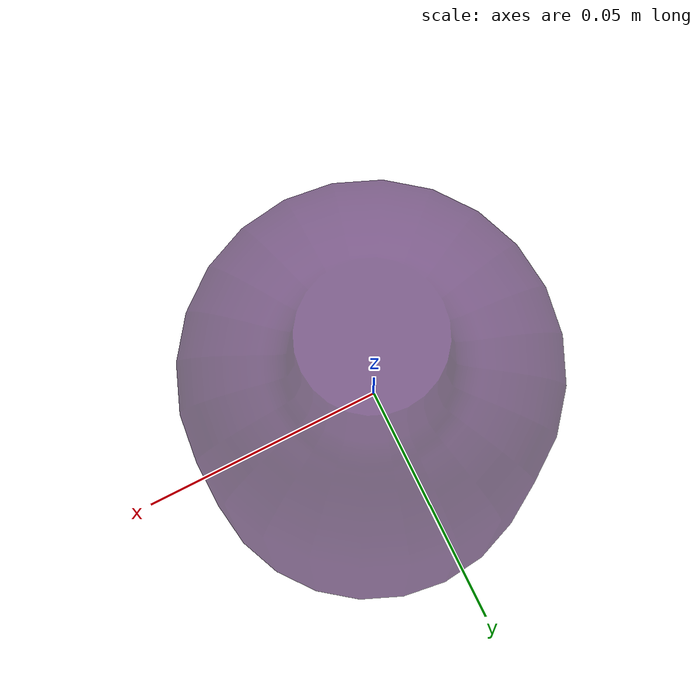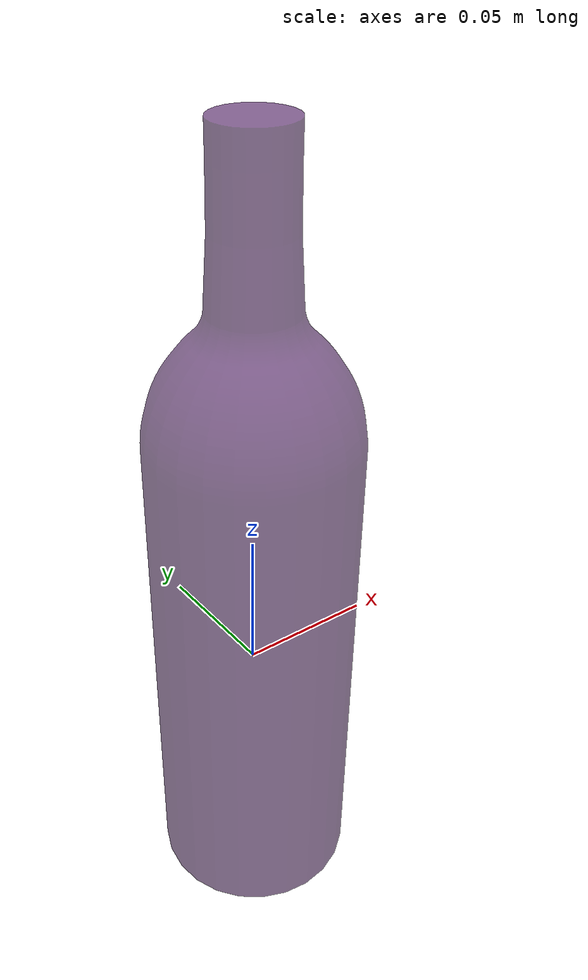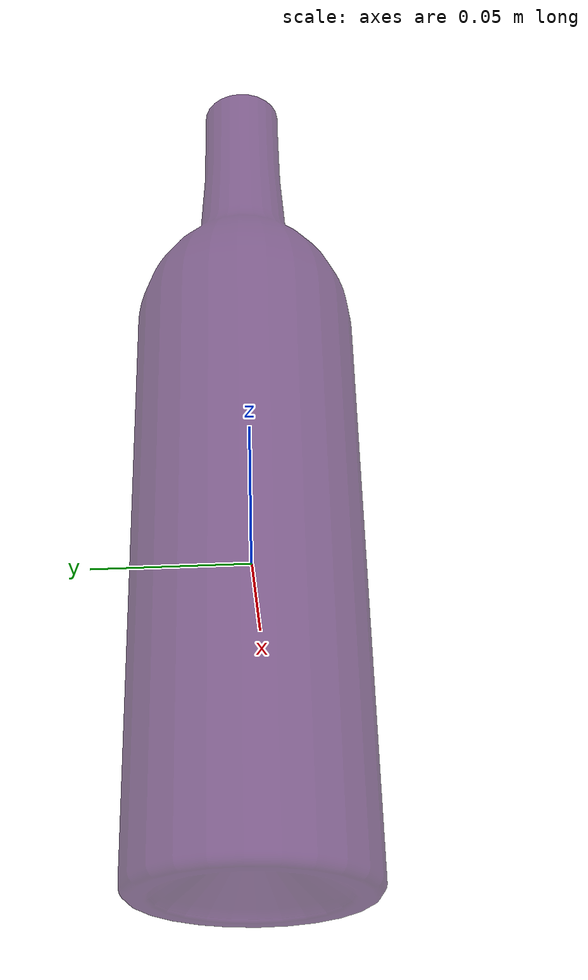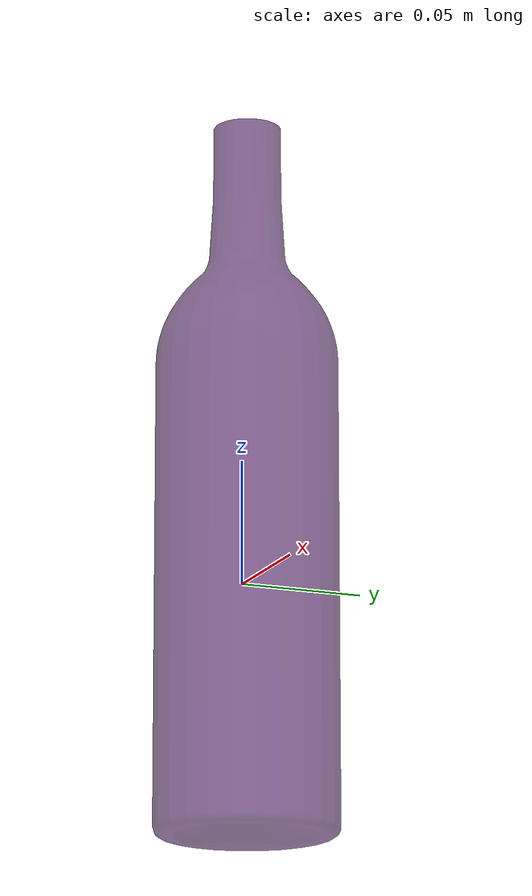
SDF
<?xml version='1.0'?>
<sdf version='1.6'>
  <model name='cube_bottle_green'>
    <link name='link_22'>
      <inertial>
          <mass>0.05</mass>
          <inertia>
            <ixx>0.001</ixx>
            <ixy>0.000000</ixy>
            <ixz>0.000000</ixz>
            <iyy>0.001</iyy>
            <iyz>0.000000</iyz>
            <izz>0.001</izz>
          </inertia>
        </inertial>
      <pose frame=''>0 0 0 0 -0 0</pose>
      <visual name='visual'>
        <pose frame=''>-0.035 -0.035 -0.1 0 -0 0</pose>
        <geometry>
          <mesh>
            <uri>model://bottle_red_wine/meshes/bottle.dae</uri>
            <scale>1 1 1</scale>
          </mesh>
        </geometry>
        <material>
          <lighting>1</lighting>
          <ambient>0.215 0 0.305 1</ambient>
          <diffuse>0.215 0 0.305 1</diffuse>
          <specular>0.01 0.01 0.01 1</specular>
          <emissive>0 0 0 1</emissive>
          <shader type='vertex'>
            <normal_map>__default__</normal_map>
          </shader>
        </material>
        <cast_shadows>1</cast_shadows>
        <transparency>0.4</transparency>
      </visual>
      <collision name='collision'>
        <laser_retro>0</laser_retro>
        <max_contacts>10</max_contacts>
        <pose frame=''>0 0 0 0 -0 0</pose>
        <geometry>
          <box>
            <size>0.060 0.060 0.200</size>
          </box>
        </geometry>
        <surface>
          <friction>
            <ode>
              <mu>100.0</mu>
              <mu2>100.0</mu2>
            </ode>
          </friction>
          <contact>
            <ode>
              <kp>1000000.0</kp>
              <kd>100.0</kd>
              <max_vel>1.0</max_vel>
              <min_depth>0.002</min_depth>
            </ode>
          </contact>
        </surface>
      </collision>
    </link>
    <static>0</static>
    <allow_auto_disable>1</allow_auto_disable>
  </model>
</sdf>
